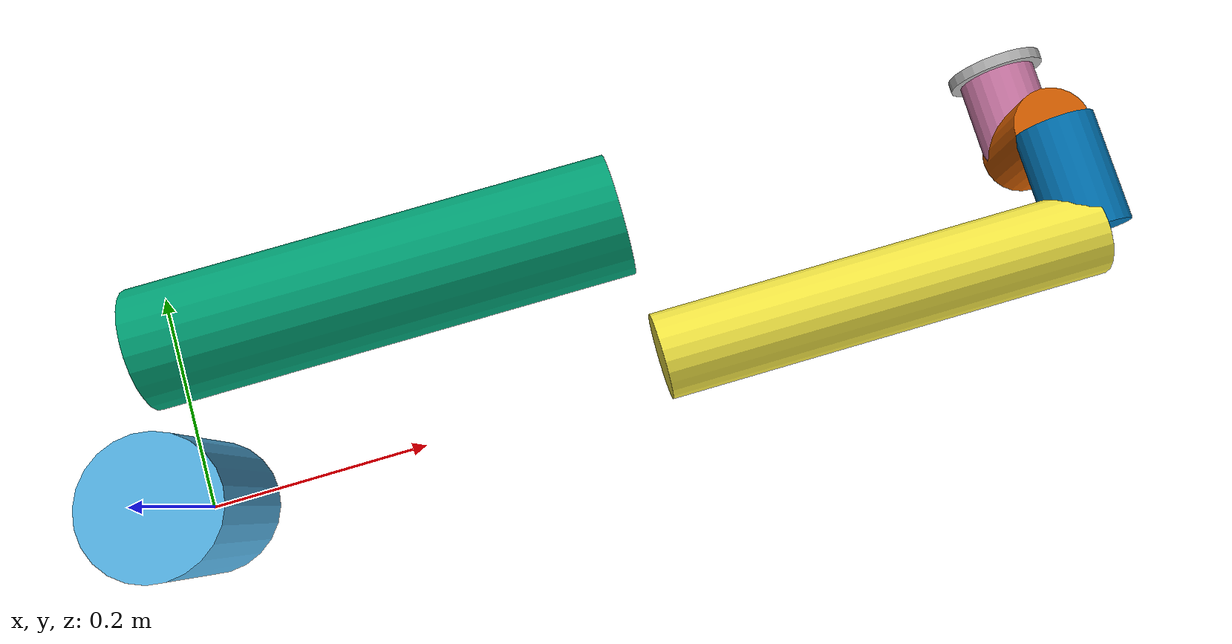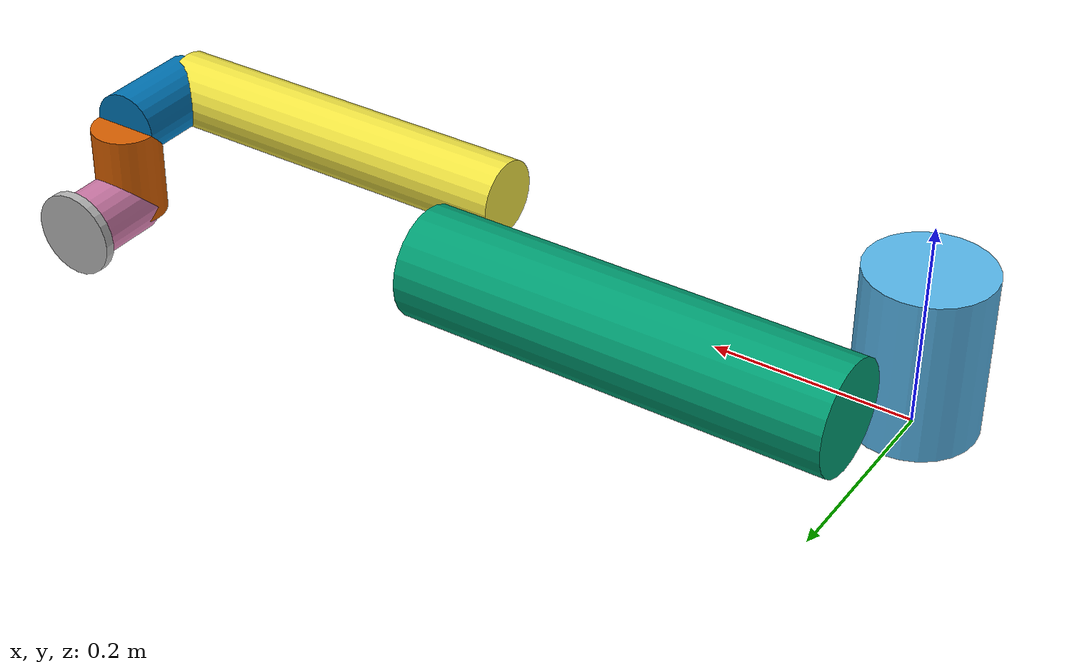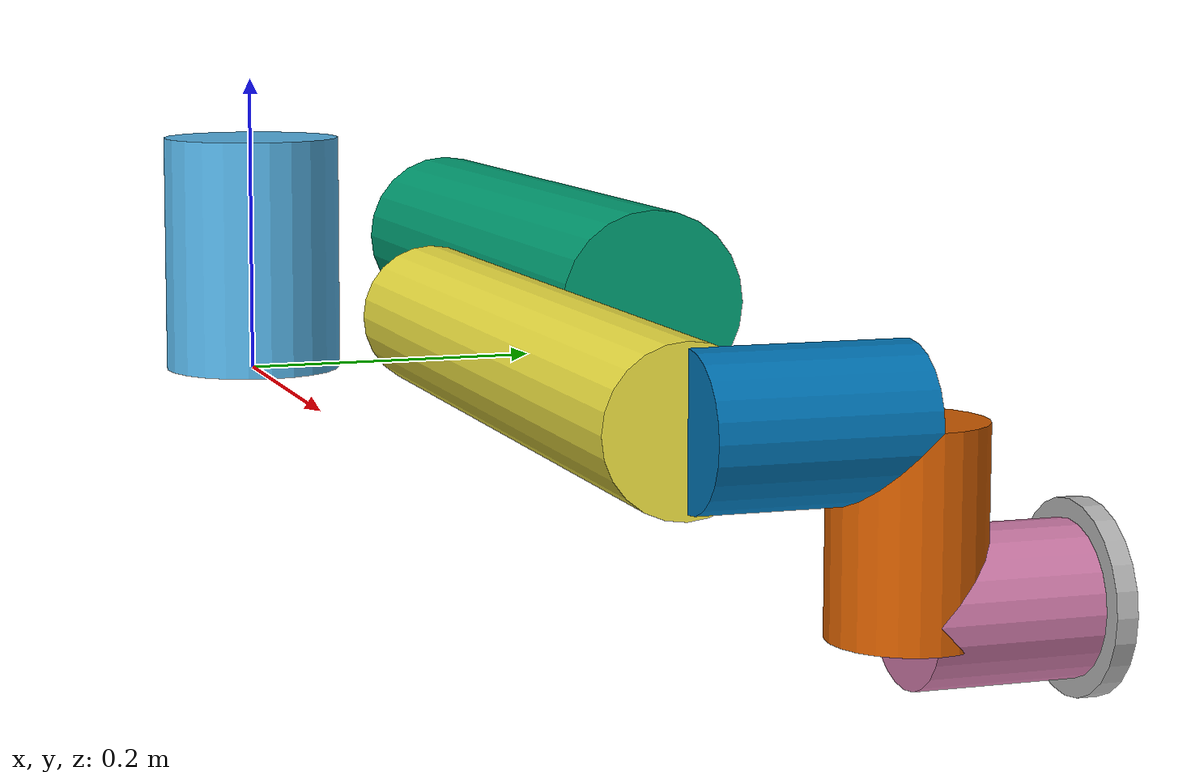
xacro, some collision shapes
<?xml version="1.0"?>
<robot name="universal_robot">

  <property name="pi" value="3.14159265" />

  <property name="base_mass" value="10.0" /> <!-- not form spec -->
  <property name="shoulder_mass" value="3.7000" />
  <property name="upper_arm_mass" value="8.3930" />
  <property name="forearm_mass" value="2.2750" />
  <property name="wrist_1_mass" value="1.2190" />
  <property name="wrist_2_mass" value="1.2190" />
  <property name="wrist_3_mass" value="0.1879" />

  <property name="shoulder_cog" value="0.0 0.00193 -0.02561" />
  <property name="upper_arm_cog" value="0.0 -0.024201 0.2125" />
  <property name="forearm_cog" value="0.0 0.0265 0.11993" /> <!-- 0.119 is not half of 0.39225 ?? -->
  <property name="wrist_1_cog" value="0.0 0.110949 0.01634" />
  <property name="wrist_2_cog" value="0.0 0.0018 0.11099" />
  <property name="wrist_3_cog" value="0.0 0.001159 0.0" />

  <property name="shoulder_height" value="0.089159" />
  <property name="shoulder_offset" value="0.13915" />  <!-- sh_off - el_off + wr_1_off = 0.10915 -->
  <property name="upper_arm_length" value="0.42500" />
  <property name="elbow_offset" value="0.130" />  <!-- manually measured -->
  <property name="forearm_length" value="0.39225" />
  <property name="wrist_1_length" value="0.100" /> <!-- manually measured -->
  <property name="wrist_2_length" value="0.09465" />
  <property name="wrist_3_length" value="0.0823" />

  <property name="shoulder_radius" value="0.060" />  <!-- manually measured -->
  <property name="upper_arm_radius" value="0.054" />  <!-- manually measured -->
  <property name="elbow_radius" value="0.060" />  <!-- manually measured -->
  <property name="forearm_radius" value="0.038" />  <!-- manually measured -->
  <property name="wrist_radius" value="0.035" />  <!-- manually measured -->

  <property name="base_collision_length" value="0.160" />  <!-- manually measured -->
  <property name="shoulder_collision_length" value="0.200" />  <!-- manually measured -->
  <property name="shoulder_collision_offset" value="0.035" />  <!-- manually measured -->
  <property name="elbow_collision_length" value="0.200" />  <!-- manually measured -->
  <property name="elbow_collision_offset" value="0.035" />  <!-- manually measured -->

  <link name="base_link" >
    <inertial>
      <mass value="${base_mass}" />
      <inertia ixx="1.0" ixy="0.0" ixz="0.0" iyy="1.0" iyz="0.0" izz="1.0"/>
    </inertial>
  </link>

  <joint name="shoulder_pan_joint" type="revolute">
    <parent link="base_link" />
    <child link = "shoulder_link" />
    <origin xyz="0.0 0.0 ${shoulder_height}" rpy="0.0 0.0 0.0" />
    <axis xyz="0.0 0.0 1.0" />
    <limit lower="${-2.0 * pi}" upper="${2.0 * pi}" effort="10.0" velocity="${pi}"/>
    <dynamics damping="0.1" friction="0.1"/>
  </joint>

  <link name="shoulder_link">
    <visual>
      <geometry>
        <cylinder length="${base_collision_length}" radius="${shoulder_radius}"/>
      </geometry>
      <origin xyz="0.0 0.0 ${base_collision_length / 2.0 - shoulder_height}" rpy="0.0 0.0 0.0" />
    </visual>
    <collision>
      <geometry>
        <cylinder length="${shoulder_height}" radius="${shoulder_radius}"/>
      </geometry>
      <origin xyz="0.0 0.0 ${-shoulder_height/2.0}" rpy="0.0 0.0 0.0" />
    </collision>
    <inertial>
      <mass value="${shoulder_mass}" />
      <inertia ixx="1.0" ixy="0.0" ixz="0.0" iyy="1.0" iyz="0.0" izz="1.0"/>
      <origin xyz="${shoulder_cog}" rpy="0.0 0.0 0.0" />
    </inertial>
  </link>

  <joint name="shoulder_lift_joint" type="revolute">
    <parent link="shoulder_link" />
    <child link = "upper_arm_link" />
    <origin xyz="0.0 ${shoulder_offset} 0.0" rpy="0.0 ${pi / 2.0} 0.0" />
    <axis xyz="0.0 1.0 0.0" />
    <limit lower="${-2.0 * pi}" upper="${2.0 * pi}" effort="10.0" velocity="${pi}"/>
    <dynamics damping="0.1" friction="0.1"/>
  </joint>

  <link name="upper_arm_link">
    <visual>
      <geometry>
       <mesh filename="package://universal_robot_description/meshes/UpperArm.dae" />
      </geometry>
      <origin xyz="0.0 0.0 0.0" rpy="0.0 0.0 0.0" />
    </visual>
    <collision>
      <geometry>
        <cylinder length="${upper_arm_length}" radius="${upper_arm_radius}"/>
      </geometry>
      <origin xyz="0.0 0.0 ${upper_arm_length/2.0}" rpy="0.0 0.0 0.0" />
    </collision>
    <inertial>
      <mass value="${upper_arm_mass}" />
      <inertia ixx="1.0" ixy="0.0" ixz="0.0" iyy="1.0" iyz="0.0" izz="1.0"/>
      <origin xyz="${upper_arm_cog}" rpy="0.0 0.0 0.0" />
    </inertial>
  </link>

  <joint name="elbow_joint" type="revolute">
    <parent link="upper_arm_link" />
    <child link = "forearm_link" />
    <origin xyz="0.0 ${-elbow_offset} ${upper_arm_length}" rpy="0.0 0.0 0.0" />
    <axis xyz="0.0 1.0 0.0" />
    <limit lower="${-2.0 * pi}" upper="${2.0 * pi}" effort="10.0" velocity="${pi}"/>
    <dynamics damping="0.1" friction="0.1"/>
  </joint>

  <link name="forearm_link">
    <visual>
      <geometry>
        <cylinder length="${forearm_length}" radius="${forearm_radius}"/>
      </geometry>
      <origin xyz="0.0 0.0 ${forearm_length/2.0}" rpy="0.0 0.0 0.0" />
    </visual>
    <collision>
      <geometry>
        <cylinder length="${forearm_length}" radius="${forearm_radius}"/>
      </geometry>
      <origin xyz="0.0 0.0 ${forearm_length/2.0}" rpy="0.0 0.0 0.0" />
    </collision>
    <inertial>
      <mass value="${forearm_mass}" />
      <origin xyz="${forearm_cog}" rpy="0.0 0.0 0.0" />
      <inertia ixx="1.0" ixy="0.0" ixz="0.0" iyy="1.0" iyz="0.0" izz="1.0"/>
    </inertial>
  </link>

  <joint name="wrist_1_joint" type="revolute">
    <parent link="forearm_link" />
    <child link = "wrist_1_link" />
    <origin xyz="0.0 0.0 ${forearm_length}" rpy="0.0 ${pi / 2.0} 0.0" />
    <axis xyz="0.0 1.0 0.0" />
    <limit lower="${-2.0 * pi}" upper="${2.0 * pi}" effort="10.0" velocity="${pi}"/>
    <dynamics damping="0.1" friction="0.1"/>
  </joint>

  <link name="wrist_1_link">
    <visual>
      <geometry>
        <cylinder length="${wrist_1_length}" radius="${wrist_radius}"/>
      </geometry>
      <origin xyz="0.0 ${wrist_1_length/2.0} 0.0" rpy="${-pi/2.0} 0.0 0.0" />
    </visual>
    <collision>
      <geometry>
        <cylinder length="${wrist_1_length}" radius="${wrist_radius}"/>
      </geometry>
      <origin xyz="0.0 ${wrist_1_length/2.0} 0.0" rpy="${-pi/2.0} 0.0 0.0" />
    </collision>
    <inertial>
      <mass value="${wrist_1_mass}" />
      <origin xyz="${wrist_1_cog}" rpy="0.0 0.0 0.0" />
      <inertia ixx="1.0" ixy="0.0" ixz="0.0" iyy="1.0" iyz="0.0" izz="1.0"/>
    </inertial>
  </link>

  <joint name="wrist_2_joint" type="revolute">
    <parent link="wrist_1_link" />
    <child link = "wrist_2_link" />
    <origin xyz="0.0 ${wrist_1_length} 0.0" rpy="0.0 0.0 0.0" />
    <axis xyz="0.0 0.0 1.0" />
    <limit lower="${-2.0 * pi}" upper="${2.0 * pi}" effort="10.0" velocity="${pi}"/>
    <dynamics damping="0.1" friction="0.1"/>
  </joint>

  <link name="wrist_2_link">
    <visual>
      <geometry>
        <cylinder length="${wrist_2_length}" radius="${wrist_radius}"/>
      </geometry>
      <origin xyz="0.0 0.0 ${wrist_2_length/2.0}" rpy="0.0 0.0 0.0" />
    </visual>
    <collision>
      <geometry>
        <cylinder length="${wrist_2_length}" radius="${wrist_radius}"/>
      </geometry>
      <origin xyz="0.0 0.0 ${wrist_2_length/2.0}" rpy="0.0 0.0 0.0" />
    </collision>
    <inertial>
      <mass value="${wrist_2_mass}" />
      <origin xyz="${wrist_2_cog}" rpy="0.0 0.0 0.0" />
      <inertia ixx="1.0" ixy="0.0" ixz="0.0" iyy="1.0" iyz="0.0" izz="1.0"/>
    </inertial>
  </link>

  <joint name="wrist_3_joint" type="revolute">
    <parent link="wrist_2_link" />
    <child link = "wrist_3_link" />
    <origin xyz="0.0 0.0 ${wrist_3_length}" rpy="0.0 0.0 0.0" />
    <axis xyz="0.0 1.0 0.0" />
    <limit lower="${-2.0 * pi}" upper="${2.0 * pi}" effort="10.0" velocity="${pi}"/>
    <dynamics damping="0.1" friction="0.1"/>
  </joint>

  <link name="wrist_3_link">
    <visual>
      <geometry>
        <cylinder length="${wrist_3_length}" radius="${wrist_radius}"/>
      </geometry>
      <origin xyz="0.0 ${wrist_3_length/2.0} 0.0" rpy="${-pi/2.0} 0.0 0.0" />
    </visual>
    <collision>
      <geometry>
        <cylinder length="${wrist_3_length}" radius="${wrist_radius}"/>
      </geometry>
      <origin xyz="0.0 ${wrist_3_length/2.0} 0.0" rpy="${-pi/2.0} 0.0 0.0" />
    </collision>
    <inertial>
      <mass value="${wrist_3_mass}" />
      <origin xyz="${wrist_3_cog}" rpy="0.0 0.0 0.0" />
      <inertia ixx="1.0" ixy="0.0" ixz="0.0" iyy="1.0" iyz="0.0" izz="1.0"/>
    </inertial>
  </link>

  <joint name="ee_fixed_joint" type="fixed">
    <parent link="wrist_3_link" />
    <child link = "ee_link" />
    <origin xyz="0.0 ${wrist_3_length} 0.0" rpy="0.0 0.0 ${pi/2.0}" />
  </joint>

  <link name="ee_link">
    <visual>
      <geometry>
        <cylinder length="0.01" radius="${wrist_radius * 1.25}"/>
      </geometry>
      <origin xyz="0.0 0.0 0.0" rpy="0.0 ${-pi/2.0} 0.0" />
    </visual>
    <collision>
      <geometry>
        <cylinder length="0.01" radius="${wrist_radius * 1.25}"/>
      </geometry>
      <origin xyz="0.0 0.0 0.0" rpy="0.0 ${-pi/2.0} 0.0" />
    </collision>
  </link>

  <joint name="shoulder_collision_joint" type="fixed">
    <parent link="upper_arm_link" />
    <child link = "shoulder_collision_link" />
  </joint>
  <link name="shoulder_collision_link">
    <collision>
      <geometry>
        <cylinder length="${shoulder_collision_length}" radius="${shoulder_radius}"/>
      </geometry>
      <origin xyz="0.0 ${-shoulder_collision_offset} 0.0" rpy="${-pi / 2.0} 0.0 0.0" />
    </collision>
  </link>

  <joint name="elbow_collision_joint" type="fixed">
    <parent link="upper_arm_link" />
    <child link = "elbow_collision_link" />
  </joint>
  <link name="elbow_collision_link">
    <collision>
      <geometry>
        <cylinder length="${elbow_collision_length}" radius="${elbow_radius}"/>
      </geometry>
      <origin xyz="0.0 ${-elbow_collision_offset} ${upper_arm_length}" rpy="${pi / 2.0} 0.0 0.0" />
    </collision>
  </link>

  <gazebo reference="universal_robot">
    <material>Gazebo/Blue</material>
  </gazebo>

</robot>
